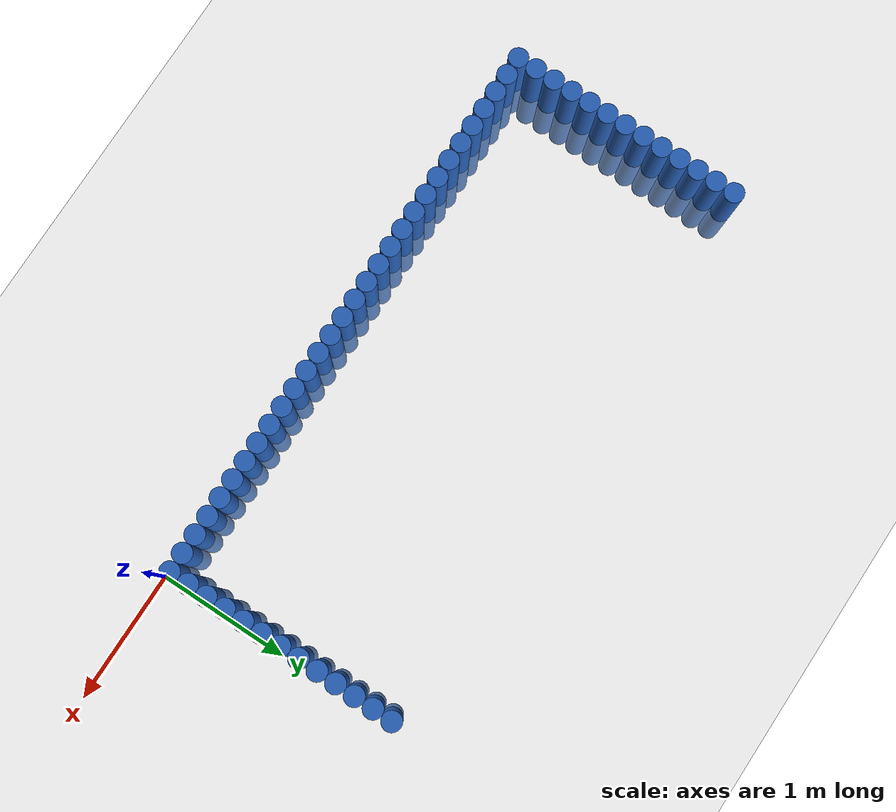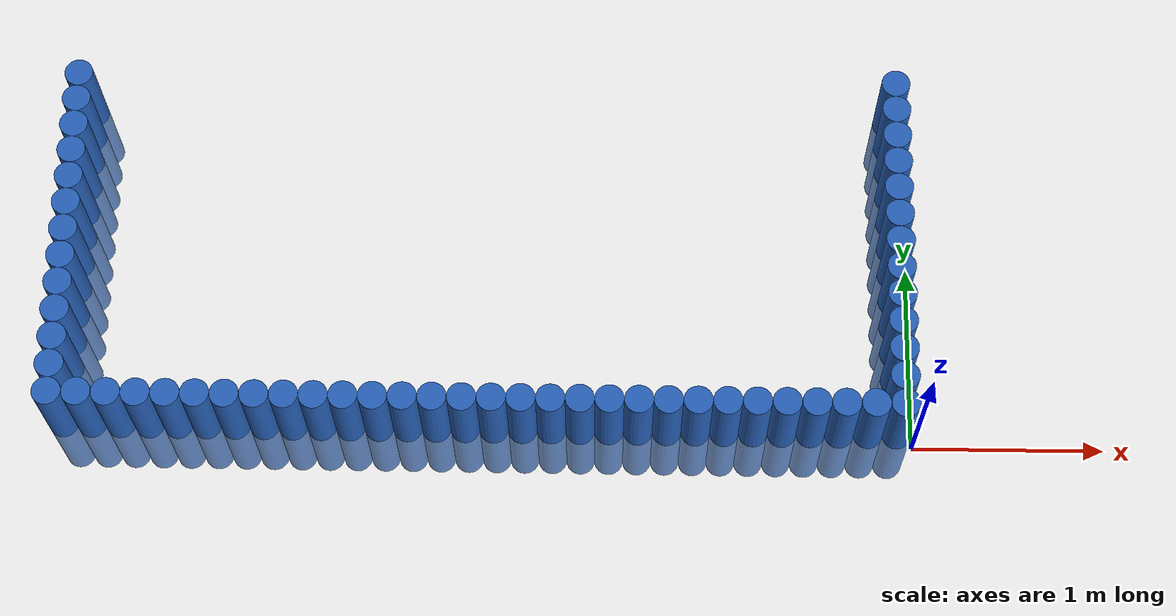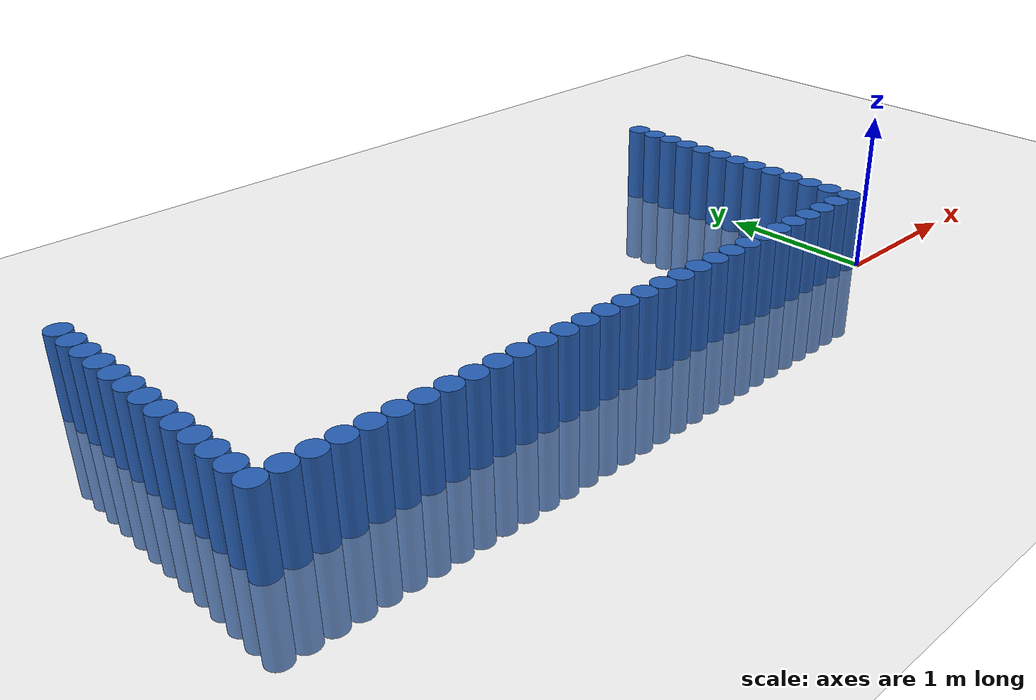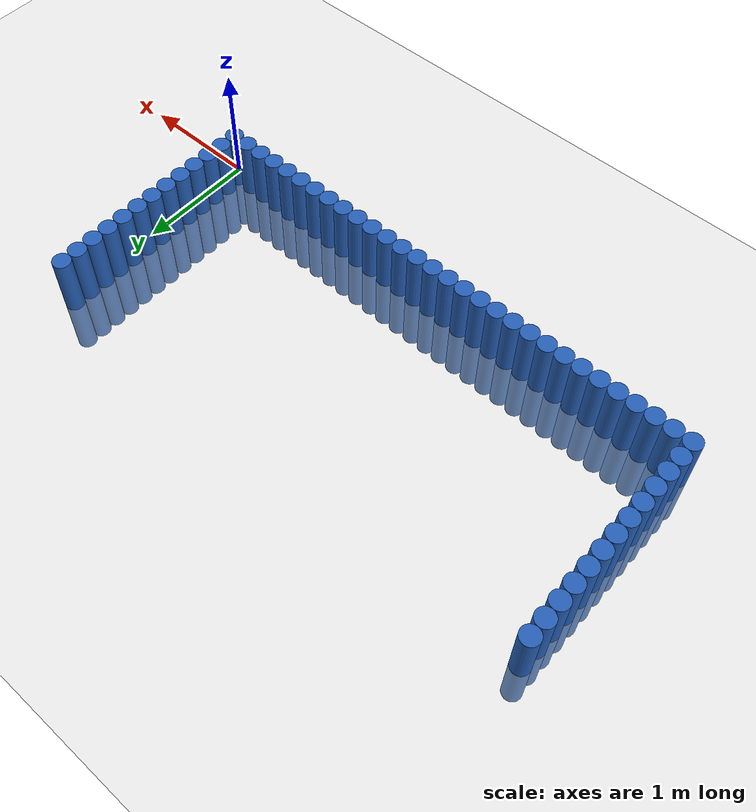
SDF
<sdf version="1.7">
 <world name="default">
  <model name="ground_plane">
   <static>1</static>
   <link name="link">
    <collision name="collision">
     <geometry><plane><normal>0 0 1</normal><size>100 100</size></plane></geometry>
     <surface><friction><ode><mu>100</mu><mu2>50</mu2></ode></friction></surface>
    </collision>
    <visual name="visual">
     <cast_shadows>0</cast_shadows>
     <geometry><plane><normal>0 0 1</normal><size>100 100</size></plane></geometry>
     <material>
      <script><uri>file://media/materials/scripts/gazebo.material</uri><name>Gazebo/Grey</name></script>
     </material>
    </visual>
   </link>
  </model>
  <model name="unit_cylinder_0">
   <static>1</static>
   <pose>-0.075 0.075 0 0 -0 0</pose>
   <link name="link">
    <inertial>
     <mass>1</mass>
     <inertia><ixx>0.145833</ixx><ixy>0</ixy><ixz>0</ixz><iyy>0.145833</iyy><iyz>0</iyz><izz>0.125</izz></inertia>
    </inertial>
    <collision name="collision">
     <geometry><cylinder><radius>0.075</radius><length>1</length></cylinder></geometry>
    </collision>
    <visual name="visual">
     <geometry><cylinder><radius>0.075</radius><length>1</length></cylinder></geometry>
     <material><ambient>0.152 0.379 0.72 1</ambient><diffuse>0.152 0.379 0.72 1</diffuse></material>
     <material>
      <script><name>Gazebo/Grey</name><uri>file://media/materials/scripts/gazebo.material</uri></script>
     </material>
    </visual>
   </link>
  </model>
  <model name="unit_cylinder_1">
   <static>1</static>
   <pose>-0.225 0.075 0 0 -0 0</pose>
   <link name="link">
    <inertial>
     <mass>1</mass>
     <inertia><ixx>0.145833</ixx><ixy>0</ixy><ixz>0</ixz><iyy>0.145833</iyy><iyz>0</iyz><izz>0.125</izz></inertia>
    </inertial>
    <collision name="collision">
     <geometry><cylinder><radius>0.075</radius><length>1</length></cylinder></geometry>
    </collision>
    <visual name="visual">
     <geometry><cylinder><radius>0.075</radius><length>1</length></cylinder></geometry>
     <material><ambient>0.152 0.379 0.72 1</ambient><diffuse>0.152 0.379 0.72 1</diffuse></material>
     <material>
      <script><name>Gazebo/Grey</name><uri>file://media/materials/scripts/gazebo.material</uri></script>
     </material>
    </visual>
   </link>
  </model>
  <model name="unit_cylinder_2">
   <static>1</static>
   <pose>-0.375 0.075 0 0 -0 0</pose>
   <link name="link">
    <inertial>
     <mass>1</mass>
     <inertia><ixx>0.145833</ixx><ixy>0</ixy><ixz>0</ixz><iyy>0.145833</iyy><iyz>0</iyz><izz>0.125</izz></inertia>
    </inertial>
    <collision name="collision">
     <geometry><cylinder><radius>0.075</radius><length>1</length></cylinder></geometry>
    </collision>
    <visual name="visual">
     <geometry><cylinder><radius>0.075</radius><length>1</length></cylinder></geometry>
     <material><ambient>0.152 0.379 0.72 1</ambient><diffuse>0.152 0.379 0.72 1</diffuse></material>
     <material>
      <script><name>Gazebo/Grey</name><uri>file://media/materials/scripts/gazebo.material</uri></script>
     </material>
    </visual>
   </link>
  </model>
  <model name="unit_cylinder_3">
   <static>1</static>
   <pose>-0.525 0.075 0 0 -0 0</pose>
   <link name="link">
    <inertial>
     <mass>1</mass>
     <inertia><ixx>0.145833</ixx><ixy>0</ixy><ixz>0</ixz><iyy>0.145833</iyy><iyz>0</iyz><izz>0.125</izz></inertia>
    </inertial>
    <collision name="collision">
     <geometry><cylinder><radius>0.075</radius><length>1</length></cylinder></geometry>
    </collision>
    <visual name="visual">
     <geometry><cylinder><radius>0.075</radius><length>1</length></cylinder></geometry>
     <material><ambient>0.152 0.379 0.72 1</ambient><diffuse>0.152 0.379 0.72 1</diffuse></material>
     <material>
      <script><name>Gazebo/Grey</name><uri>file://media/materials/scripts/gazebo.material</uri></script>
     </material>
    </visual>
   </link>
  </model>
  <model name="unit_cylinder_4">
   <static>1</static>
   <pose>-0.675 0.075 0 0 -0 0</pose>
   <link name="link">
    <inertial>
     <mass>1</mass>
     <inertia><ixx>0.145833</ixx><ixy>0</ixy><ixz>0</ixz><iyy>0.145833</iyy><iyz>0</iyz><izz>0.125</izz></inertia>
    </inertial>
    <collision name="collision">
     <geometry><cylinder><radius>0.075</radius><length>1</length></cylinder></geometry>
    </collision>
    <visual name="visual">
     <geometry><cylinder><radius>0.075</radius><length>1</length></cylinder></geometry>
     <material><ambient>0.152 0.379 0.72 1</ambient><diffuse>0.152 0.379 0.72 1</diffuse></material>
     <material>
      <script><name>Gazebo/Grey</name><uri>file://media/materials/scripts/gazebo.material</uri></script>
     </material>
    </visual>
   </link>
  </model>
  <model name="unit_cylinder_5">
   <static>1</static>
   <pose>-0.825 0.075 0 0 -0 0</pose>
   <link name="link">
    <inertial>
     <mass>1</mass>
     <inertia><ixx>0.145833</ixx><ixy>0</ixy><ixz>0</ixz><iyy>0.145833</iyy><iyz>0</iyz><izz>0.125</izz></inertia>
    </inertial>
    <collision name="collision">
     <geometry><cylinder><radius>0.075</radius><length>1</length></cylinder></geometry>
    </collision>
    <visual name="visual">
     <geometry><cylinder><radius>0.075</radius><length>1</length></cylinder></geometry>
     <material><ambient>0.152 0.379 0.72 1</ambient><diffuse>0.152 0.379 0.72 1</diffuse></material>
     <material>
      <script><name>Gazebo/Grey</name><uri>file://media/materials/scripts/gazebo.material</uri></script>
     </material>
    </visual>
   </link>
  </model>
  <model name="unit_cylinder_6">
   <static>1</static>
   <pose>-0.975 0.075 0 0 -0 0</pose>
   <link name="link">
    <inertial>
     <mass>1</mass>
     <inertia><ixx>0.145833</ixx><ixy>0</ixy><ixz>0</ixz><iyy>0.145833</iyy><iyz>0</iyz><izz>0.125</izz></inertia>
    </inertial>
    <collision name="collision">
     <geometry><cylinder><radius>0.075</radius><length>1</length></cylinder></geometry>
    </collision>
    <visual name="visual">
     <geometry><cylinder><radius>0.075</radius><length>1</length></cylinder></geometry>
     <material><ambient>0.152 0.379 0.72 1</ambient><diffuse>0.152 0.379 0.72 1</diffuse></material>
     <material>
      <script><name>Gazebo/Grey</name><uri>file://media/materials/scripts/gazebo.material</uri></script>
     </material>
    </visual>
   </link>
  </model>
  <model name="unit_cylinder_7">
   <static>1</static>
   <pose>-1.125 0.075 0 0 -0 0</pose>
   <link name="link">
    <inertial>
     <mass>1</mass>
     <inertia><ixx>0.145833</ixx><ixy>0</ixy><ixz>0</ixz><iyy>0.145833</iyy><iyz>0</iyz><izz>0.125</izz></inertia>
    </inertial>
    <collision name="collision">
     <geometry><cylinder><radius>0.075</radius><length>1</length></cylinder></geometry>
    </collision>
    <visual name="visual">
     <geometry><cylinder><radius>0.075</radius><length>1</length></cylinder></geometry>
     <material><ambient>0.152 0.379 0.72 1</ambient><diffuse>0.152 0.379 0.72 1</diffuse></material>
     <material>
      <script><name>Gazebo/Grey</name><uri>file://media/materials/scripts/gazebo.material</uri></script>
     </material>
    </visual>
   </link>
  </model>
  <model name="unit_cylinder_8">
   <static>1</static>
   <pose>-1.275 0.075 0 0 -0 0</pose>
   <link name="link">
    <inertial>
     <mass>1</mass>
     <inertia><ixx>0.145833</ixx><ixy>0</ixy><ixz>0</ixz><iyy>0.145833</iyy><iyz>0</iyz><izz>0.125</izz></inertia>
    </inertial>
    <collision name="collision">
     <geometry><cylinder><radius>0.075</radius><length>1</length></cylinder></geometry>
    </collision>
    <visual name="visual">
     <geometry><cylinder><radius>0.075</radius><length>1</length></cylinder></geometry>
     <material><ambient>0.152 0.379 0.72 1</ambient><diffuse>0.152 0.379 0.72 1</diffuse></material>
     <material>
      <script><name>Gazebo/Grey</name><uri>file://media/materials/scripts/gazebo.material</uri></script>
     </material>
    </visual>
   </link>
  </model>
  <model name="unit_cylinder_9">
   <static>1</static>
   <pose>-1.425 0.075 0 0 -0 0</pose>
   <link name="link">
    <inertial>
     <mass>1</mass>
     <inertia><ixx>0.145833</ixx><ixy>0</ixy><ixz>0</ixz><iyy>0.145833</iyy><iyz>0</iyz><izz>0.125</izz></inertia>
    </inertial>
    <collision name="collision">
     <geometry><cylinder><radius>0.075</radius><length>1</length></cylinder></geometry>
    </collision>
    <visual name="visual">
     <geometry><cylinder><radius>0.075</radius><length>1</length></cylinder></geometry>
     <material><ambient>0.152 0.379 0.72 1</ambient><diffuse>0.152 0.379 0.72 1</diffuse></material>
     <material>
      <script><name>Gazebo/Grey</name><uri>file://media/materials/scripts/gazebo.material</uri></script>
     </material>
    </visual>
   </link>
  </model>
  <model name="unit_cylinder_10">
   <static>1</static>
   <pose>-1.575 0.075 0 0 -0 0</pose>
   <link name="link">
    <inertial>
     <mass>1</mass>
     <inertia><ixx>0.145833</ixx><ixy>0</ixy><ixz>0</ixz><iyy>0.145833</iyy><iyz>0</iyz><izz>0.125</izz></inertia>
    </inertial>
    <collision name="collision">
     <geometry><cylinder><radius>0.075</radius><length>1</length></cylinder></geometry>
    </collision>
    <visual name="visual">
     <geometry><cylinder><radius>0.075</radius><length>1</length></cylinder></geometry>
     <material><ambient>0.152 0.379 0.72 1</ambient><diffuse>0.152 0.379 0.72 1</diffuse></material>
     <material>
      <script><name>Gazebo/Grey</name><uri>file://media/materials/scripts/gazebo.material</uri></script>
     </material>
    </visual>
   </link>
  </model>
  <model name="unit_cylinder_11">
   <static>1</static>
   <pose>-1.725 0.075 0 0 -0 0</pose>
   <link name="link">
    <inertial>
     <mass>1</mass>
     <inertia><ixx>0.145833</ixx><ixy>0</ixy><ixz>0</ixz><iyy>0.145833</iyy><iyz>0</iyz><izz>0.125</izz></inertia>
    </inertial>
    <collision name="collision">
     <geometry><cylinder><radius>0.075</radius><length>1</length></cylinder></geometry>
    </collision>
    <visual name="visual">
     <geometry><cylinder><radius>0.075</radius><length>1</length></cylinder></geometry>
     <material><ambient>0.152 0.379 0.72 1</ambient><diffuse>0.152 0.379 0.72 1</diffuse></material>
     <material>
      <script><name>Gazebo/Grey</name><uri>file://media/materials/scripts/gazebo.material</uri></script>
     </material>
    </visual>
   </link>
  </model>
  <model name="unit_cylinder_12">
   <static>1</static>
   <pose>-1.875 0.075 0 0 -0 0</pose>
   <link name="link">
    <inertial>
     <mass>1</mass>
     <inertia><ixx>0.145833</ixx><ixy>0</ixy><ixz>0</ixz><iyy>0.145833</iyy><iyz>0</iyz><izz>0.125</izz></inertia>
    </inertial>
    <collision name="collision">
     <geometry><cylinder><radius>0.075</radius><length>1</length></cylinder></geometry>
    </collision>
    <visual name="visual">
     <geometry><cylinder><radius>0.075</radius><length>1</length></cylinder></geometry>
     <material><ambient>0.152 0.379 0.72 1</ambient><diffuse>0.152 0.379 0.72 1</diffuse></material>
     <material>
      <script><name>Gazebo/Grey</name><uri>file://media/materials/scripts/gazebo.material</uri></script>
     </material>
    </visual>
   </link>
  </model>
  <model name="unit_cylinder_13">
   <static>1</static>
   <pose>-2.025 0.075 0 0 -0 0</pose>
   <link name="link">
    <inertial>
     <mass>1</mass>
     <inertia><ixx>0.145833</ixx><ixy>0</ixy><ixz>0</ixz><iyy>0.145833</iyy><iyz>0</iyz><izz>0.125</izz></inertia>
    </inertial>
    <collision name="collision">
     <geometry><cylinder><radius>0.075</radius><length>1</length></cylinder></geometry>
    </collision>
    <visual name="visual">
     <geometry><cylinder><radius>0.075</radius><length>1</length></cylinder></geometry>
     <material><ambient>0.152 0.379 0.72 1</ambient><diffuse>0.152 0.379 0.72 1</diffuse></material>
     <material>
      <script><name>Gazebo/Grey</name><uri>file://media/materials/scripts/gazebo.material</uri></script>
     </material>
    </visual>
   </link>
  </model>
  <model name="unit_cylinder_14">
   <static>1</static>
   <pose>-2.175 0.075 0 0 -0 0</pose>
   <link name="link">
    <inertial>
     <mass>1</mass>
     <inertia><ixx>0.145833</ixx><ixy>0</ixy><ixz>0</ixz><iyy>0.145833</iyy><iyz>0</iyz><izz>0.125</izz></inertia>
    </inertial>
    <collision name="collision">
     <geometry><cylinder><radius>0.075</radius><length>1</length></cylinder></geometry>
    </collision>
    <visual name="visual">
     <geometry><cylinder><radius>0.075</radius><length>1</length></cylinder></geometry>
     <material><ambient>0.152 0.379 0.72 1</ambient><diffuse>0.152 0.379 0.72 1</diffuse></material>
     <material>
      <script><name>Gazebo/Grey</name><uri>file://media/materials/scripts/gazebo.material</uri></script>
     </material>
    </visual>
   </link>
  </model>
  <model name="unit_cylinder_15">
   <static>1</static>
   <pose>-2.325 0.075 0 0 -0 0</pose>
   <link name="link">
    <inertial>
     <mass>1</mass>
     <inertia><ixx>0.145833</ixx><ixy>0</ixy><ixz>0</ixz><iyy>0.145833</iyy><iyz>0</iyz><izz>0.125</izz></inertia>
    </inertial>
    <collision name="collision">
     <geometry><cylinder><radius>0.075</radius><length>1</length></cylinder></geometry>
    </collision>
    <visual name="visual">
     <geometry><cylinder><radius>0.075</radius><length>1</length></cylinder></geometry>
     <material><ambient>0.152 0.379 0.72 1</ambient><diffuse>0.152 0.379 0.72 1</diffuse></material>
     <material>
      <script><name>Gazebo/Grey</name><uri>file://media/materials/scripts/gazebo.material</uri></script>
     </material>
    </visual>
   </link>
  </model>
  <model name="unit_cylinder_16">
   <static>1</static>
   <pose>-2.475 0.075 0 0 -0 0</pose>
   <link name="link">
    <inertial>
     <mass>1</mass>
     <inertia><ixx>0.145833</ixx><ixy>0</ixy><ixz>0</ixz><iyy>0.145833</iyy><iyz>0</iyz><izz>0.125</izz></inertia>
    </inertial>
    <collision name="collision">
     <geometry><cylinder><radius>0.075</radius><length>1</length></cylinder></geometry>
    </collision>
    <visual name="visual">
     <geometry><cylinder><radius>0.075</radius><length>1</length></cylinder></geometry>
     <material><ambient>0.152 0.379 0.72 1</ambient><diffuse>0.152 0.379 0.72 1</diffuse></material>
     <material>
      <script><name>Gazebo/Grey</name><uri>file://media/materials/scripts/gazebo.material</uri></script>
     </material>
    </visual>
   </link>
  </model>
  <model name="unit_cylinder_17">
   <static>1</static>
   <pose>-2.625 0.075 0 0 -0 0</pose>
   <link name="link">
    <inertial>
     <mass>1</mass>
     <inertia><ixx>0.145833</ixx><ixy>0</ixy><ixz>0</ixz><iyy>0.145833</iyy><iyz>0</iyz><izz>0.125</izz></inertia>
    </inertial>
    <collision name="collision">
     <geometry><cylinder><radius>0.075</radius><length>1</length></cylinder></geometry>
    </collision>
    <visual name="visual">
     <geometry><cylinder><radius>0.075</radius><length>1</length></cylinder></geometry>
     <material><ambient>0.152 0.379 0.72 1</ambient><diffuse>0.152 0.379 0.72 1</diffuse></material>
     <material>
      <script><name>Gazebo/Grey</name><uri>file://media/materials/scripts/gazebo.material</uri></script>
     </material>
    </visual>
   </link>
  </model>
  <model name="unit_cylinder_18">
   <static>1</static>
   <pose>-2.775 0.075 0 0 -0 0</pose>
   <link name="link">
    <inertial>
     <mass>1</mass>
     <inertia><ixx>0.145833</ixx><ixy>0</ixy><ixz>0</ixz><iyy>0.145833</iyy><iyz>0</iyz><izz>0.125</izz></inertia>
    </inertial>
    <collision name="collision">
     <geometry><cylinder><radius>0.075</radius><length>1</length></cylinder></geometry>
    </collision>
    <visual name="visual">
     <geometry><cylinder><radius>0.075</radius><length>1</length></cylinder></geometry>
     <material><ambient>0.152 0.379 0.72 1</ambient><diffuse>0.152 0.379 0.72 1</diffuse></material>
     <material>
      <script><name>Gazebo/Grey</name><uri>file://media/materials/scripts/gazebo.material</uri></script>
     </material>
    </visual>
   </link>
  </model>
  <model name="unit_cylinder_19">
   <static>1</static>
   <pose>-2.925 0.075 0 0 -0 0</pose>
   <link name="link">
    <inertial>
     <mass>1</mass>
     <inertia><ixx>0.145833</ixx><ixy>0</ixy><ixz>0</ixz><iyy>0.145833</iyy><iyz>0</iyz><izz>0.125</izz></inertia>
    </inertial>
    <collision name="collision">
     <geometry><cylinder><radius>0.075</radius><length>1</length></cylinder></geometry>
    </collision>
    <visual name="visual">
     <geometry><cylinder><radius>0.075</radius><length>1</length></cylinder></geometry>
     <material><ambient>0.152 0.379 0.72 1</ambient><diffuse>0.152 0.379 0.72 1</diffuse></material>
     <material>
      <script><name>Gazebo/Grey</name><uri>file://media/materials/scripts/gazebo.material</uri></script>
     </material>
    </visual>
   </link>
  </model>
  <model name="unit_cylinder_20">
   <static>1</static>
   <pose>-3.075 0.075 0 0 -0 0</pose>
   <link name="link">
    <inertial>
     <mass>1</mass>
     <inertia><ixx>0.145833</ixx><ixy>0</ixy><ixz>0</ixz><iyy>0.145833</iyy><iyz>0</iyz><izz>0.125</izz></inertia>
    </inertial>
    <collision name="collision">
     <geometry><cylinder><radius>0.075</radius><length>1</length></cylinder></geometry>
    </collision>
    <visual name="visual">
     <geometry><cylinder><radius>0.075</radius><length>1</length></cylinder></geometry>
     <material><ambient>0.152 0.379 0.72 1</ambient><diffuse>0.152 0.379 0.72 1</diffuse></material>
     <material>
      <script><name>Gazebo/Grey</name><uri>file://media/materials/scripts/gazebo.material</uri></script>
     </material>
    </visual>
   </link>
  </model>
  <model name="unit_cylinder_21">
   <static>1</static>
   <pose>-3.225 0.075 0 0 -0 0</pose>
   <link name="link">
    <inertial>
     <mass>1</mass>
     <inertia><ixx>0.145833</ixx><ixy>0</ixy><ixz>0</ixz><iyy>0.145833</iyy><iyz>0</iyz><izz>0.125</izz></inertia>
    </inertial>
    <collision name="collision">
     <geometry><cylinder><radius>0.075</radius><length>1</length></cylinder></geometry>
    </collision>
    <visual name="visual">
     <geometry><cylinder><radius>0.075</radius><length>1</length></cylinder></geometry>
     <material><ambient>0.152 0.379 0.72 1</ambient><diffuse>0.152 0.379 0.72 1</diffuse></material>
     <material>
      <script><name>Gazebo/Grey</name><uri>file://media/materials/scripts/gazebo.material</uri></script>
     </material>
    </visual>
   </link>
  </model>
  <model name="unit_cylinder_22">
   <static>1</static>
   <pose>-3.375 0.075 0 0 -0 0</pose>
   <link name="link">
    <inertial>
     <mass>1</mass>
     <inertia><ixx>0.145833</ixx><ixy>0</ixy><ixz>0</ixz><iyy>0.145833</iyy><iyz>0</iyz><izz>0.125</izz></inertia>
    </inertial>
    <collision name="collision">
     <geometry><cylinder><radius>0.075</radius><length>1</length></cylinder></geometry>
    </collision>
    <visual name="visual">
     <geometry><cylinder><radius>0.075</radius><length>1</length></cylinder></geometry>
     <material><ambient>0.152 0.379 0.72 1</ambient><diffuse>0.152 0.379 0.72 1</diffuse></material>
     <material>
      <script><name>Gazebo/Grey</name><uri>file://media/materials/scripts/gazebo.material</uri></script>
     </material>
    </visual>
   </link>
  </model>
  <model name="unit_cylinder_23">
   <static>1</static>
   <pose>-3.525 0.075 0 0 -0 0</pose>
   <link name="link">
    <inertial>
     <mass>1</mass>
     <inertia><ixx>0.145833</ixx><ixy>0</ixy><ixz>0</ixz><iyy>0.145833</iyy><iyz>0</iyz><izz>0.125</izz></inertia>
    </inertial>
    <collision name="collision">
     <geometry><cylinder><radius>0.075</radius><length>1</length></cylinder></geometry>
    </collision>
    <visual name="visual">
     <geometry><cylinder><radius>0.075</radius><length>1</length></cylinder></geometry>
     <material><ambient>0.152 0.379 0.72 1</ambient><diffuse>0.152 0.379 0.72 1</diffuse></material>
     <material>
      <script><name>Gazebo/Grey</name><uri>file://media/materials/scripts/gazebo.material</uri></script>
     </material>
    </visual>
   </link>
  </model>
  <model name="unit_cylinder_24">
   <static>1</static>
   <pose>-3.675 0.075 0 0 -0 0</pose>
   <link name="link">
    <inertial>
     <mass>1</mass>
     <inertia><ixx>0.145833</ixx><ixy>0</ixy><ixz>0</ixz><iyy>0.145833</iyy><iyz>0</iyz><izz>0.125</izz></inertia>
    </inertial>
    <collision name="collision">
     <geometry><cylinder><radius>0.075</radius><length>1</length></cylinder></geometry>
    </collision>
    <visual name="visual">
     <geometry><cylinder><radius>0.075</radius><length>1</length></cylinder></geometry>
     <material><ambient>0.152 0.379 0.72 1</ambient><diffuse>0.152 0.379 0.72 1</diffuse></material>
     <material>
      <script><name>Gazebo/Grey</name><uri>file://media/materials/scripts/gazebo.material</uri></script>
     </material>
    </visual>
   </link>
  </model>
  <model name="unit_cylinder_25">
   <static>1</static>
   <pose>-3.825 0.075 0 0 -0 0</pose>
   <link name="link">
    <inertial>
     <mass>1</mass>
     <inertia><ixx>0.145833</ixx><ixy>0</ixy><ixz>0</ixz><iyy>0.145833</iyy><iyz>0</iyz><izz>0.125</izz></inertia>
    </inertial>
    <collision name="collision">
     <geometry><cylinder><radius>0.075</radius><length>1</length></cylinder></geometry>
    </collision>
    <visual name="visual">
     <geometry><cylinder><radius>0.075</radius><length>1</length></cylinder></geometry>
     <material><ambient>0.152 0.379 0.72 1</ambient><diffuse>0.152 0.379 0.72 1</diffuse></material>
     <material>
      <script><name>Gazebo/Grey</name><uri>file://media/materials/scripts/gazebo.material</uri></script>
     </material>
    </visual>
   </link>
  </model>
  <model name="unit_cylinder_26">
   <static>1</static>
   <pose>-3.975 0.075 0 0 -0 0</pose>
   <link name="link">
    <inertial>
     <mass>1</mass>
     <inertia><ixx>0.145833</ixx><ixy>0</ixy><ixz>0</ixz><iyy>0.145833</iyy><iyz>0</iyz><izz>0.125</izz></inertia>
    </inertial>
    <collision name="collision">
     <geometry><cylinder><radius>0.075</radius><length>1</length></cylinder></geometry>
    </collision>
    <visual name="visual">
     <geometry><cylinder><radius>0.075</radius><length>1</length></cylinder></geometry>
     <material><ambient>0.152 0.379 0.72 1</ambient><diffuse>0.152 0.379 0.72 1</diffuse></material>
     <material>
      <script><name>Gazebo/Grey</name><uri>file://media/materials/scripts/gazebo.material</uri></script>
     </material>
    </visual>
   </link>
  </model>
  <model name="unit_cylinder_27">
   <static>1</static>
   <pose>-4.125 0.075 0 0 -0 0</pose>
   <link name="link">
    <inertial>
     <mass>1</mass>
     <inertia><ixx>0.145833</ixx><ixy>0</ixy><ixz>0</ixz><iyy>0.145833</iyy><iyz>0</iyz><izz>0.125</izz></inertia>
    </inertial>
    <collision name="collision">
     <geometry><cylinder><radius>0.075</radius><length>1</length></cylinder></geometry>
    </collision>
    <visual name="visual">
     <geometry><cylinder><radius>0.075</radius><length>1</length></cylinder></geometry>
     <material><ambient>0.152 0.379 0.72 1</ambient><diffuse>0.152 0.379 0.72 1</diffuse></material>
     <material>
      <script><name>Gazebo/Grey</name><uri>file://media/materials/scripts/gazebo.material</uri></script>
     </material>
    </visual>
   </link>
  </model>
  <model name="unit_cylinder_28">
   <static>1</static>
   <pose>-4.275 0.075 0 0 -0 0</pose>
   <link name="link">
    <inertial>
     <mass>1</mass>
     <inertia><ixx>0.145833</ixx><ixy>0</ixy><ixz>0</ixz><iyy>0.145833</iyy><iyz>0</iyz><izz>0.125</izz></inertia>
    </inertial>
    <collision name="collision">
     <geometry><cylinder><radius>0.075</radius><length>1</length></cylinder></geometry>
    </collision>
    <visual name="visual">
     <geometry><cylinder><radius>0.075</radius><length>1</length></cylinder></geometry>
     <material><ambient>0.152 0.379 0.72 1</ambient><diffuse>0.152 0.379 0.72 1</diffuse></material>
     <material>
      <script><name>Gazebo/Grey</name><uri>file://media/materials/scripts/gazebo.material</uri></script>
     </material>
    </visual>
   </link>
  </model>
  <model name="unit_cylinder_29">
   <static>1</static>
   <pose>-4.425 0.075 0 0 -0 0</pose>
   <link name="link">
    <inertial>
     <mass>1</mass>
     <inertia><ixx>0.145833</ixx><ixy>0</ixy><ixz>0</ixz><iyy>0.145833</iyy><iyz>0</iyz><izz>0.125</izz></inertia>
    </inertial>
    <collision name="collision">
     <geometry><cylinder><radius>0.075</radius><length>1</length></cylinder></geometry>
    </collision>
    <visual name="visual">
     <geometry><cylinder><radius>0.075</radius><length>1</length></cylinder></geometry>
     <material><ambient>0.152 0.379 0.72 1</ambient><diffuse>0.152 0.379 0.72 1</diffuse></material>
     <material>
      <script><name>Gazebo/Grey</name><uri>file://media/materials/scripts/gazebo.material</uri></script>
     </material>
    </visual>
   </link>
  </model>
  <model name="unit_cylinder_30">
   <static>1</static>
   <pose>-0.075 0.225 0 0 -0 0</pose>
   <link name="link">
    <inertial>
     <mass>1</mass>
     <inertia><ixx>0.145833</ixx><ixy>0</ixy><ixz>0</ixz><iyy>0.145833</iyy><iyz>0</iyz><izz>0.125</izz></inertia>
    </inertial>
    <collision name="collision">
     <geometry><cylinder><radius>0.075</radius><length>1</length></cylinder></geometry>
    </collision>
    <visual name="visual">
     <geometry><cylinder><radius>0.075</radius><length>1</length></cylinder></geometry>
     <material><ambient>0.152 0.379 0.72 1</ambient><diffuse>0.152 0.379 0.72 1</diffuse></material>
     <material>
      <script><name>Gazebo/Grey</name><uri>file://media/materials/scripts/gazebo.material</uri></script>
     </material>
    </visual>
   </link>
  </model>
  <model name="unit_cylinder_31">
   <static>1</static>
   <pose>-4.425 0.225 0 0 -0 0</pose>
   <link name="link">
    <inertial>
     <mass>1</mass>
     <inertia><ixx>0.145833</ixx><ixy>0</ixy><ixz>0</ixz><iyy>0.145833</iyy><iyz>0</iyz><izz>0.125</izz></inertia>
    </inertial>
    <collision name="collision">
     <geometry><cylinder><radius>0.075</radius><length>1</length></cylinder></geometry>
    </collision>
    <visual name="visual">
     <geometry><cylinder><radius>0.075</radius><length>1</length></cylinder></geometry>
     <material><ambient>0.152 0.379 0.72 1</ambient><diffuse>0.152 0.379 0.72 1</diffuse></material>
     <material>
      <script><name>Gazebo/Grey</name><uri>file://media/materials/scripts/gazebo.material</uri></script>
     </material>
    </visual>
   </link>
  </model>
  <model name="unit_cylinder_32">
   <static>1</static>
   <pose>-0.075 0.375 0 0 -0 0</pose>
   <link name="link">
    <inertial>
     <mass>1</mass>
     <inertia><ixx>0.145833</ixx><ixy>0</ixy><ixz>0</ixz><iyy>0.145833</iyy><iyz>0</iyz><izz>0.125</izz></inertia>
    </inertial>
    <collision name="collision">
     <geometry><cylinder><radius>0.075</radius><length>1</length></cylinder></geometry>
    </collision>
    <visual name="visual">
     <geometry><cylinder><radius>0.075</radius><length>1</length></cylinder></geometry>
     <material><ambient>0.152 0.379 0.72 1</ambient><diffuse>0.152 0.379 0.72 1</diffuse></material>
     <material>
      <script><name>Gazebo/Grey</name><uri>file://media/materials/scripts/gazebo.material</uri></script>
     </material>
    </visual>
   </link>
  </model>
  <model name="unit_cylinder_33">
   <static>1</static>
   <pose>-4.425 0.375 0 0 -0 0</pose>
   <link name="link">
    <inertial>
     <mass>1</mass>
     <inertia><ixx>0.145833</ixx><ixy>0</ixy><ixz>0</ixz><iyy>0.145833</iyy><iyz>0</iyz><izz>0.125</izz></inertia>
    </inertial>
    <collision name="collision">
     <geometry><cylinder><radius>0.075</radius><length>1</length></cylinder></geometry>
    </collision>
    <visual name="visual">
     <geometry><cylinder><radius>0.075</radius><length>1</length></cylinder></geometry>
     <material><ambient>0.152 0.379 0.72 1</ambient><diffuse>0.152 0.379 0.72 1</diffuse></material>
     <material>
      <script><name>Gazebo/Grey</name><uri>file://media/materials/scripts/gazebo.material</uri></script>
     </material>
    </visual>
   </link>
  </model>
  <model name="unit_cylinder_34">
   <static>1</static>
   <pose>-0.075 0.525 0 0 -0 0</pose>
   <link name="link">
    <inertial>
     <mass>1</mass>
     <inertia><ixx>0.145833</ixx><ixy>0</ixy><ixz>0</ixz><iyy>0.145833</iyy><iyz>0</iyz><izz>0.125</izz></inertia>
    </inertial>
    <collision name="collision">
     <geometry><cylinder><radius>0.075</radius><length>1</length></cylinder></geometry>
    </collision>
    <visual name="visual">
     <geometry><cylinder><radius>0.075</radius><length>1</length></cylinder></geometry>
     <material><ambient>0.152 0.379 0.72 1</ambient><diffuse>0.152 0.379 0.72 1</diffuse></material>
     <material>
      <script><name>Gazebo/Grey</name><uri>file://media/materials/scripts/gazebo.material</uri></script>
     </material>
    </visual>
   </link>
  </model>
  <model name="unit_cylinder_35">
   <static>1</static>
   <pose>-4.425 0.525 0 0 -0 0</pose>
   <link name="link">
    <inertial>
     <mass>1</mass>
     <inertia><ixx>0.145833</ixx><ixy>0</ixy><ixz>0</ixz><iyy>0.145833</iyy><iyz>0</iyz><izz>0.125</izz></inertia>
    </inertial>
    <collision name="collision">
     <geometry><cylinder><radius>0.075</radius><length>1</length></cylinder></geometry>
    </collision>
    <visual name="visual">
     <geometry><cylinder><radius>0.075</radius><length>1</length></cylinder></geometry>
     <material><ambient>0.152 0.379 0.72 1</ambient><diffuse>0.152 0.379 0.72 1</diffuse></material>
     <material>
      <script><name>Gazebo/Grey</name><uri>file://media/materials/scripts/gazebo.material</uri></script>
     </material>
    </visual>
   </link>
  </model>
  <model name="unit_cylinder_36">
   <static>1</static>
   <pose>-0.075 0.675 0 0 -0 0</pose>
   <link name="link">
    <inertial>
     <mass>1</mass>
     <inertia><ixx>0.145833</ixx><ixy>0</ixy><ixz>0</ixz><iyy>0.145833</iyy><iyz>0</iyz><izz>0.125</izz></inertia>
    </inertial>
    <collision name="collision">
     <geometry><cylinder><radius>0.075</radius><length>1</length></cylinder></geometry>
    </collision>
    <visual name="visual">
     <geometry><cylinder><radius>0.075</radius><length>1</length></cylinder></geometry>
     <material><ambient>0.152 0.379 0.72 1</ambient><diffuse>0.152 0.379 0.72 1</diffuse></material>
     <material>
      <script><name>Gazebo/Grey</name><uri>file://media/materials/scripts/gazebo.material</uri></script>
     </material>
    </visual>
   </link>
  </model>
  <model name="unit_cylinder_37">
   <static>1</static>
   <pose>-4.425 0.675 0 0 -0 0</pose>
   <link name="link">
    <inertial>
     <mass>1</mass>
     <inertia><ixx>0.145833</ixx><ixy>0</ixy><ixz>0</ixz><iyy>0.145833</iyy><iyz>0</iyz><izz>0.125</izz></inertia>
    </inertial>
    <collision name="collision">
     <geometry><cylinder><radius>0.075</radius><length>1</length></cylinder></geometry>
    </collision>
    <visual name="visual">
     <geometry><cylinder><radius>0.075</radius><length>1</length></cylinder></geometry>
     <material><ambient>0.152 0.379 0.72 1</ambient><diffuse>0.152 0.379 0.72 1</diffuse></material>
     <material>
      <script><name>Gazebo/Grey</name><uri>file://media/materials/scripts/gazebo.material</uri></script>
     </material>
    </visual>
   </link>
  </model>
  <model name="unit_cylinder_38">
   <static>1</static>
   <pose>-0.075 0.825 0 0 -0 0</pose>
   <link name="link">
    <inertial>
     <mass>1</mass>
     <inertia><ixx>0.145833</ixx><ixy>0</ixy><ixz>0</ixz><iyy>0.145833</iyy><iyz>0</iyz><izz>0.125</izz></inertia>
    </inertial>
    <collision name="collision">
     <geometry><cylinder><radius>0.075</radius><length>1</length></cylinder></geometry>
    </collision>
    <visual name="visual">
     <geometry><cylinder><radius>0.075</radius><length>1</length></cylinder></geometry>
     <material><ambient>0.152 0.379 0.72 1</ambient><diffuse>0.152 0.379 0.72 1</diffuse></material>
     <material>
      <script><name>Gazebo/Grey</name><uri>file://media/materials/scripts/gazebo.material</uri></script>
     </material>
    </visual>
   </link>
  </model>
  <model name="unit_cylinder_39">
   <static>1</static>
   <pose>-4.425 0.825 0 0 -0 0</pose>
   <link name="link">
    <inertial>
     <mass>1</mass>
     <inertia><ixx>0.145833</ixx><ixy>0</ixy><ixz>0</ixz><iyy>0.145833</iyy><iyz>0</iyz><izz>0.125</izz></inertia>
    </inertial>
    <collision name="collision">
     <geometry><cylinder><radius>0.075</radius><length>1</length></cylinder></geometry>
    </collision>
    <visual name="visual">
     <geometry><cylinder><radius>0.075</radius><length>1</length></cylinder></geometry>
     <material><ambient>0.152 0.379 0.72 1</ambient><diffuse>0.152 0.379 0.72 1</diffuse></material>
     <material>
      <script><name>Gazebo/Grey</name><uri>file://media/materials/scripts/gazebo.material</uri></script>
     </material>
    </visual>
   </link>
  </model>
  <model name="unit_cylinder_40">
   <static>1</static>
   <pose>-0.075 0.975 0 0 -0 0</pose>
   <link name="link">
    <inertial>
     <mass>1</mass>
     <inertia><ixx>0.145833</ixx><ixy>0</ixy><ixz>0</ixz><iyy>0.145833</iyy><iyz>0</iyz><izz>0.125</izz></inertia>
    </inertial>
    <collision name="collision">
     <geometry><cylinder><radius>0.075</radius><length>1</length></cylinder></geometry>
    </collision>
    <visual name="visual">
     <geometry><cylinder><radius>0.075</radius><length>1</length></cylinder></geometry>
     <material><ambient>0.152 0.379 0.72 1</ambient><diffuse>0.152 0.379 0.72 1</diffuse></material>
     <material>
      <script><name>Gazebo/Grey</name><uri>file://media/materials/scripts/gazebo.material</uri></script>
     </material>
    </visual>
   </link>
  </model>
  <model name="unit_cylinder_41">
   <static>1</static>
   <pose>-4.425 0.975 0 0 -0 0</pose>
   <link name="link">
    <inertial>
     <mass>1</mass>
     <inertia><ixx>0.145833</ixx><ixy>0</ixy><ixz>0</ixz><iyy>0.145833</iyy><iyz>0</iyz><izz>0.125</izz></inertia>
    </inertial>
    <collision name="collision">
     <geometry><cylinder><radius>0.075</radius><length>1</length></cylinder></geometry>
    </collision>
    <visual name="visual">
     <geometry><cylinder><radius>0.075</radius><length>1</length></cylinder></geometry>
     <material><ambient>0.152 0.379 0.72 1</ambient><diffuse>0.152 0.379 0.72 1</diffuse></material>
     <material>
      <script><name>Gazebo/Grey</name><uri>file://media/materials/scripts/gazebo.material</uri></script>
     </material>
    </visual>
   </link>
  </model>
  <model name="unit_cylinder_42">
   <static>1</static>
   <pose>-0.075 1.125 0 0 -0 0</pose>
   <link name="link">
    <inertial>
     <mass>1</mass>
     <inertia><ixx>0.145833</ixx><ixy>0</ixy><ixz>0</ixz><iyy>0.145833</iyy><iyz>0</iyz><izz>0.125</izz></inertia>
    </inertial>
    <collision name="collision">
     <geometry><cylinder><radius>0.075</radius><length>1</length></cylinder></geometry>
    </collision>
    <visual name="visual">
     <geometry><cylinder><radius>0.075</radius><length>1</length></cylinder></geometry>
     <material><ambient>0.152 0.379 0.72 1</ambient><diffuse>0.152 0.379 0.72 1</diffuse></material>
     <material>
      <script><name>Gazebo/Grey</name><uri>file://media/materials/scripts/gazebo.material</uri></script>
     </material>
    </visual>
   </link>
  </model>
  <model name="unit_cylinder_43">
   <static>1</static>
   <pose>-4.425 1.125 0 0 -0 0</pose>
   <link name="link">
    <inertial>
     <mass>1</mass>
     <inertia><ixx>0.145833</ixx><ixy>0</ixy><ixz>0</ixz><iyy>0.145833</iyy><iyz>0</iyz><izz>0.125</izz></inertia>
    </inertial>
    <collision name="collision">
     <geometry><cylinder><radius>0.075</radius><length>1</length></cylinder></geometry>
    </collision>
    <visual name="visual">
     <geometry><cylinder><radius>0.075</radius><length>1</length></cylinder></geometry>
     <material><ambient>0.152 0.379 0.72 1</ambient><diffuse>0.152 0.379 0.72 1</diffuse></material>
     <material>
      <script><name>Gazebo/Grey</name><uri>file://media/materials/scripts/gazebo.material</uri></script>
     </material>
    </visual>
   </link>
  </model>
  <model name="unit_cylinder_44">
   <static>1</static>
   <pose>-0.075 1.275 0 0 -0 0</pose>
   <link name="link">
    <inertial>
     <mass>1</mass>
     <inertia><ixx>0.145833</ixx><ixy>0</ixy><ixz>0</ixz><iyy>0.145833</iyy><iyz>0</iyz><izz>0.125</izz></inertia>
    </inertial>
    <collision name="collision">
     <geometry><cylinder><radius>0.075</radius><length>1</length></cylinder></geometry>
    </collision>
    <visual name="visual">
     <geometry><cylinder><radius>0.075</radius><length>1</length></cylinder></geometry>
     <material><ambient>0.152 0.379 0.72 1</ambient><diffuse>0.152 0.379 0.72 1</diffuse></material>
     <material>
      <script><name>Gazebo/Grey</name><uri>file://media/materials/scripts/gazebo.material</uri></script>
     </material>
    </visual>
   </link>
  </model>
  <model name="unit_cylinder_45">
   <static>1</static>
   <pose>-4.425 1.275 0 0 -0 0</pose>
   <link name="link">
    <inertial>
     <mass>1</mass>
     <inertia><ixx>0.145833</ixx><ixy>0</ixy><ixz>0</ixz><iyy>0.145833</iyy><iyz>0</iyz><izz>0.125</izz></inertia>
    </inertial>
    <collision name="collision">
     <geometry><cylinder><radius>0.075</radius><length>1</length></cylinder></geometry>
    </collision>
    <visual name="visual">
     <geometry><cylinder><radius>0.075</radius><length>1</length></cylinder></geometry>
     <material><ambient>0.152 0.379 0.72 1</ambient><diffuse>0.152 0.379 0.72 1</diffuse></material>
     <material>
      <script><name>Gazebo/Grey</name><uri>file://media/materials/scripts/gazebo.material</uri></script>
     </material>
    </visual>
   </link>
  </model>
  <model name="unit_cylinder_46">
   <static>1</static>
   <pose>-0.075 1.425 0 0 -0 0</pose>
   <link name="link">
    <inertial>
     <mass>1</mass>
     <inertia><ixx>0.145833</ixx><ixy>0</ixy><ixz>0</ixz><iyy>0.145833</iyy><iyz>0</iyz><izz>0.125</izz></inertia>
    </inertial>
    <collision name="collision">
     <geometry><cylinder><radius>0.075</radius><length>1</length></cylinder></geometry>
    </collision>
    <visual name="visual">
     <geometry><cylinder><radius>0.075</radius><length>1</length></cylinder></geometry>
     <material><ambient>0.152 0.379 0.72 1</ambient><diffuse>0.152 0.379 0.72 1</diffuse></material>
     <material>
      <script><name>Gazebo/Grey</name><uri>file://media/materials/scripts/gazebo.material</uri></script>
     </material>
    </visual>
   </link>
  </model>
  <model name="unit_cylinder_47">
   <static>1</static>
   <pose>-4.425 1.425 0 0 -0 0</pose>
   <link name="link">
    <inertial>
     <mass>1</mass>
     <inertia><ixx>0.145833</ixx><ixy>0</ixy><ixz>0</ixz><iyy>0.145833</iyy><iyz>0</iyz><izz>0.125</izz></inertia>
    </inertial>
    <collision name="collision">
     <geometry><cylinder><radius>0.075</radius><length>1</length></cylinder></geometry>
    </collision>
    <visual name="visual">
     <geometry><cylinder><radius>0.075</radius><length>1</length></cylinder></geometry>
     <material><ambient>0.152 0.379 0.72 1</ambient><diffuse>0.152 0.379 0.72 1</diffuse></material>
     <material>
      <script><name>Gazebo/Grey</name><uri>file://media/materials/scripts/gazebo.material</uri></script>
     </material>
    </visual>
   </link>
  </model>
  <model name="unit_cylinder_48">
   <static>1</static>
   <pose>-0.075 1.575 0 0 -0 0</pose>
   <link name="link">
    <inertial>
     <mass>1</mass>
     <inertia><ixx>0.145833</ixx><ixy>0</ixy><ixz>0</ixz><iyy>0.145833</iyy><iyz>0</iyz><izz>0.125</izz></inertia>
    </inertial>
    <collision name="collision">
     <geometry><cylinder><radius>0.075</radius><length>1</length></cylinder></geometry>
    </collision>
    <visual name="visual">
     <geometry><cylinder><radius>0.075</radius><length>1</length></cylinder></geometry>
     <material><ambient>0.152 0.379 0.72 1</ambient><diffuse>0.152 0.379 0.72 1</diffuse></material>
     <material>
      <script><name>Gazebo/Grey</name><uri>file://media/materials/scripts/gazebo.material</uri></script>
     </material>
    </visual>
   </link>
  </model>
  <model name="unit_cylinder_49">
   <static>1</static>
   <pose>-4.425 1.575 0 0 -0 0</pose>
   <link name="link">
    <inertial>
     <mass>1</mass>
     <inertia><ixx>0.145833</ixx><ixy>0</ixy><ixz>0</ixz><iyy>0.145833</iyy><iyz>0</iyz><izz>0.125</izz></inertia>
    </inertial>
    <collision name="collision">
     <geometry><cylinder><radius>0.075</radius><length>1</length></cylinder></geometry>
    </collision>
    <visual name="visual">
     <geometry><cylinder><radius>0.075</radius><length>1</length></cylinder></geometry>
     <material><ambient>0.152 0.379 0.72 1</ambient><diffuse>0.152 0.379 0.72 1</diffuse></material>
     <material>
      <script><name>Gazebo/Grey</name><uri>file://media/materials/scripts/gazebo.material</uri></script>
     </material>
    </visual>
   </link>
  </model>
  <model name="unit_cylinder_50">
   <static>1</static>
   <pose>-0.075 1.725 0 0 -0 0</pose>
   <link name="link">
    <inertial>
     <mass>1</mass>
     <inertia><ixx>0.145833</ixx><ixy>0</ixy><ixz>0</ixz><iyy>0.145833</iyy><iyz>0</iyz><izz>0.125</izz></inertia>
    </inertial>
    <collision name="collision">
     <geometry><cylinder><radius>0.075</radius><length>1</length></cylinder></geometry>
    </collision>
    <visual name="visual">
     <geometry><cylinder><radius>0.075</radius><length>1</length></cylinder></geometry>
     <material><ambient>0.152 0.379 0.72 1</ambient><diffuse>0.152 0.379 0.72 1</diffuse></material>
     <material>
      <script><name>Gazebo/Grey</name><uri>file://media/materials/scripts/gazebo.material</uri></script>
     </material>
    </visual>
   </link>
  </model>
  <model name="unit_cylinder_51">
   <static>1</static>
   <pose>-4.425 1.725 0 0 -0 0</pose>
   <link name="link">
    <inertial>
     <mass>1</mass>
     <inertia><ixx>0.145833</ixx><ixy>0</ixy><ixz>0</ixz><iyy>0.145833</iyy><iyz>0</iyz><izz>0.125</izz></inertia>
    </inertial>
    <collision name="collision">
     <geometry><cylinder><radius>0.075</radius><length>1</length></cylinder></geometry>
    </collision>
    <visual name="visual">
     <geometry><cylinder><radius>0.075</radius><length>1</length></cylinder></geometry>
     <material><ambient>0.152 0.379 0.72 1</ambient><diffuse>0.152 0.379 0.72 1</diffuse></material>
     <material>
      <script><name>Gazebo/Grey</name><uri>file://media/materials/scripts/gazebo.material</uri></script>
     </material>
    </visual>
   </link>
  </model>
  <model name="unit_cylinder_52">
   <static>1</static>
   <pose>-0.075 1.875 0 0 -0 0</pose>
   <link name="link">
    <inertial>
     <mass>1</mass>
     <inertia><ixx>0.145833</ixx><ixy>0</ixy><ixz>0</ixz><iyy>0.145833</iyy><iyz>0</iyz><izz>0.125</izz></inertia>
    </inertial>
    <collision name="collision">
     <geometry><cylinder><radius>0.075</radius><length>1</length></cylinder></geometry>
    </collision>
    <visual name="visual">
     <geometry><cylinder><radius>0.075</radius><length>1</length></cylinder></geometry>
     <material><ambient>0.152 0.379 0.72 1</ambient><diffuse>0.152 0.379 0.72 1</diffuse></material>
     <material>
      <script><name>Gazebo/Grey</name><uri>file://media/materials/scripts/gazebo.material</uri></script>
     </material>
    </visual>
   </link>
  </model>
  <model name="unit_cylinder_53">
   <static>1</static>
   <pose>-4.425 1.875 0 0 -0 0</pose>
   <link name="link">
    <inertial>
     <mass>1</mass>
     <inertia><ixx>0.145833</ixx><ixy>0</ixy><ixz>0</ixz><iyy>0.145833</iyy><iyz>0</iyz><izz>0.125</izz></inertia>
    </inertial>
    <collision name="collision">
     <geometry><cylinder><radius>0.075</radius><length>1</length></cylinder></geometry>
    </collision>
    <visual name="visual">
     <geometry><cylinder><radius>0.075</radius><length>1</length></cylinder></geometry>
     <material><ambient>0.152 0.379 0.72 1</ambient><diffuse>0.152 0.379 0.72 1</diffuse></material>
     <material>
      <script><name>Gazebo/Grey</name><uri>file://media/materials/scripts/gazebo.material</uri></script>
     </material>
    </visual>
   </link>
  </model>
 </world>
</sdf>
